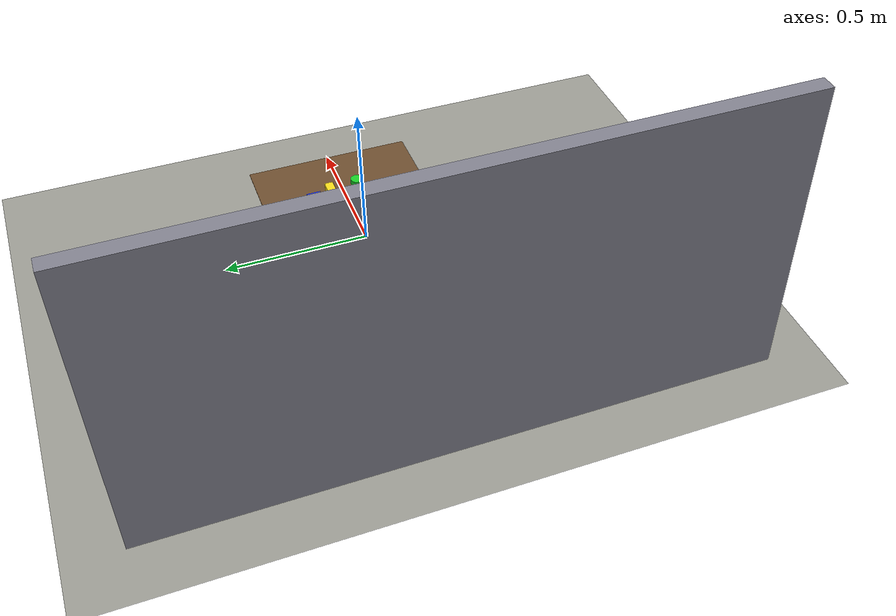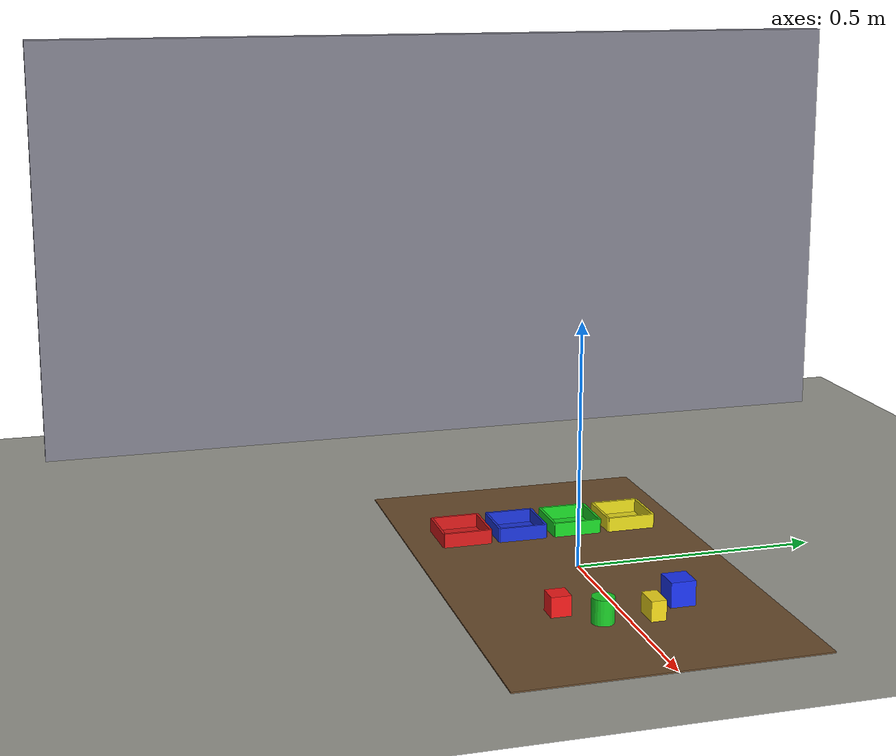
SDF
<?xml version="1.0" ?>
<sdf version="1.9">
  <world name="pick_and_place_sorting">

    <physics name="default_physics" type="ode">
      <max_step_size>0.004</max_step_size>
      <real_time_factor>1.0</real_time_factor>
    </physics>

    <light type="directional" name="sun">
      <cast_shadows>true</cast_shadows>
      <pose>0 0 10 0 0 0</pose>
      <diffuse>0.9 0.9 0.85 1</diffuse>
      <specular>0.3 0.3 0.3 1</specular>
      <attenuation>
        <range>1000</range>
        <constant>0.9</constant>
        <linear>0.01</linear>
        <quadratic>0.001</quadratic>
      </attenuation>
      <direction>-0.5 0.3 -0.9</direction>
    </light>

    <light type="directional" name="fill_light">
      <cast_shadows>false</cast_shadows>
      <pose>0 0 8 0 0 0</pose>
      <diffuse>0.4 0.4 0.5 1</diffuse>
      <specular>0.1 0.1 0.1 1</specular>
      <direction>0.5 -0.3 -0.7</direction>
    </light>

    <model name="ground_plane">
      <static>true</static>
      <link name="link">
        <collision name="collision">
          <geometry><plane><normal>0 0 1</normal><size>20 20</size></plane></geometry>
        </collision>
        <visual name="visual">
          <geometry><plane><normal>0 0 1</normal><size>20 20</size></plane></geometry>
          <material>
            <ambient>0.55 0.55 0.52 1</ambient>
            <diffuse>0.6 0.6 0.57 1</diffuse>
          </material>
        </visual>
      </link>
    </model>

    <!-- Worktop: 1.0 x 0.6 m, top surface at z = 0 -->
    <model name="table">
      <static>true</static>
      <pose>0 0 -0.02 0 0 0</pose>
      <link name="link">
        <visual name="visual">
          <geometry><box><size>1.0 0.6 0.04</size></box></geometry>
          <material>
            <ambient>0.30 0.22 0.14 1</ambient>
            <diffuse>0.42 0.30 0.18 1</diffuse>
          </material>
        </visual>
        <collision name="collision">
          <geometry><box><size>1.0 0.6 0.04</size></box></geometry>
          <surface><friction><ode><mu>0.9</mu><mu2>0.9</mu2></ode></friction></surface>
        </collision>
      </link>
    </model>

    <!--  OBJECTS TO SORT (dynamic, ~50 g each)                       -->

    <model name="red_cube">
      <pose>0.22 -0.12 0.025 0 0 0</pose>
      <link name="link">
        <visual name="visual">
          <geometry><box><size>0.04 0.04 0.04</size></box></geometry>
          <material>
            <ambient>0.7 0.05 0.05 1</ambient>
            <diffuse>0.95 0.10 0.10 1</diffuse>
            <specular>0.4 0.1 0.1 1</specular>
          </material>
        </visual>
        <collision name="collision">
          <geometry><box><size>0.04 0.04 0.04</size></box></geometry>
          <surface><friction><ode><mu>1.0</mu><mu2>1.0</mu2></ode></friction></surface>
        </collision>
        <inertial>
          <mass>0.05</mass>
          <inertia>
            <ixx>1.33e-5</ixx><iyy>1.33e-5</iyy><izz>1.33e-5</izz>
            <ixy>0</ixy><ixz>0</ixz><iyz>0</iyz>
          </inertia>
        </inertial>
      </link>
    </model>

    <model name="blue_cube">
      <pose>0.22 0.12 0.025 0 0 0</pose>
      <link name="link">
        <visual name="visual">
          <geometry><box><size>0.05 0.05 0.05</size></box></geometry>
          <material>
            <ambient>0.05 0.10 0.7 1</ambient>
            <diffuse>0.10 0.20 0.95 1</diffuse>
            <specular>0.1 0.1 0.4 1</specular>
          </material>
        </visual>
        <collision name="collision">
          <geometry><box><size>0.05 0.05 0.05</size></box></geometry>
          <surface><friction><ode><mu>1.0</mu><mu2>1.0</mu2></ode></friction></surface>
        </collision>
        <inertial>
          <mass>0.06</mass>
          <inertia>
            <ixx>2.5e-5</ixx><iyy>2.5e-5</iyy><izz>2.5e-5</izz>
            <ixy>0</ixy><ixz>0</ixz><iyz>0</iyz>
          </inertia>
        </inertial>
      </link>
    </model>

    <model name="green_cylinder">
      <pose>0.27 -0.05 0.025 0 0 0</pose>
      <link name="link">
        <visual name="visual">
          <geometry><cylinder><radius>0.022</radius><length>0.05</length></cylinder></geometry>
          <material>
            <ambient>0.05 0.55 0.10 1</ambient>
            <diffuse>0.10 0.80 0.15 1</diffuse>
            <specular>0.1 0.4 0.1 1</specular>
          </material>
        </visual>
        <collision name="collision">
          <geometry><cylinder><radius>0.022</radius><length>0.05</length></cylinder></geometry>
          <surface><friction><ode><mu>1.0</mu><mu2>1.0</mu2></ode></friction></surface>
        </collision>
        <inertial>
          <mass>0.05</mass>
          <inertia>
            <ixx>1.25e-5</ixx><iyy>1.25e-5</iyy><izz>1.21e-5</izz>
            <ixy>0</ixy><ixz>0</ixz><iyz>0</iyz>
          </inertia>
        </inertial>
      </link>
    </model>

    <model name="yellow_box">
      <pose>0.27 0.05 0.020 0 0 0</pose>
      <link name="link">
        <visual name="visual">
          <geometry><box><size>0.05 0.03 0.04</size></box></geometry>
          <material>
            <ambient>0.7 0.6 0.05 1</ambient>
            <diffuse>0.95 0.85 0.10 1</diffuse>
            <specular>0.4 0.4 0.1 1</specular>
          </material>
        </visual>
        <collision name="collision">
          <geometry><box><size>0.05 0.03 0.04</size></box></geometry>
          <surface><friction><ode><mu>1.0</mu><mu2>1.0</mu2></ode></friction></surface>
        </collision>
        <inertial>
          <mass>0.05</mass>
          <inertia>
            <ixx>1.08e-5</ixx><iyy>1.71e-5</iyy><izz>2.04e-5</izz>
            <ixy>0</ixy><ixz>0</ixz><iyz>0</iyz>
          </inertia>
        </inertial>
      </link>
    </model>

    <!--  DROP BINS (static, with low walls so objects stay inside)   -->
    <!--  Each bin: 0.10 x 0.10 footprint, 0.03 m wall height         -->

    <model name="red_bin">
      <static>true</static>
      <pose>-0.22 -0.18 0.0 0 0 0</pose>
      <link name="link">
        <visual name="floor"><pose>0 0 0.001 0 0 0</pose>
          <geometry><box><size>0.10 0.10 0.002</size></box></geometry>
          <material><ambient>0.55 0.05 0.05 1</ambient><diffuse>0.85 0.10 0.10 1</diffuse></material>
        </visual>
        <visual name="wn"><pose>0 0.05 0.015 0 0 0</pose>
          <geometry><box><size>0.10 0.005 0.03</size></box></geometry>
          <material><ambient>0.55 0.05 0.05 1</ambient><diffuse>0.85 0.10 0.10 1</diffuse></material>
        </visual>
        <visual name="ws"><pose>0 -0.05 0.015 0 0 0</pose>
          <geometry><box><size>0.10 0.005 0.03</size></box></geometry>
          <material><ambient>0.55 0.05 0.05 1</ambient><diffuse>0.85 0.10 0.10 1</diffuse></material>
        </visual>
        <visual name="we"><pose>0.05 0 0.015 0 0 0</pose>
          <geometry><box><size>0.005 0.10 0.03</size></box></geometry>
          <material><ambient>0.55 0.05 0.05 1</ambient><diffuse>0.85 0.10 0.10 1</diffuse></material>
        </visual>
        <visual name="ww"><pose>-0.05 0 0.015 0 0 0</pose>
          <geometry><box><size>0.005 0.10 0.03</size></box></geometry>
          <material><ambient>0.55 0.05 0.05 1</ambient><diffuse>0.85 0.10 0.10 1</diffuse></material>
        </visual>
        <collision name="floor_c"><pose>0 0 0.001 0 0 0</pose>
          <geometry><box><size>0.10 0.10 0.002</size></box></geometry></collision>
        <collision name="wn_c"><pose>0 0.05 0.015 0 0 0</pose>
          <geometry><box><size>0.10 0.005 0.03</size></box></geometry></collision>
        <collision name="ws_c"><pose>0 -0.05 0.015 0 0 0</pose>
          <geometry><box><size>0.10 0.005 0.03</size></box></geometry></collision>
        <collision name="we_c"><pose>0.05 0 0.015 0 0 0</pose>
          <geometry><box><size>0.005 0.10 0.03</size></box></geometry></collision>
        <collision name="ww_c"><pose>-0.05 0 0.015 0 0 0</pose>
          <geometry><box><size>0.005 0.10 0.03</size></box></geometry></collision>
      </link>
    </model>

    <model name="blue_bin">
      <static>true</static>
      <pose>-0.22 -0.06 0.0 0 0 0</pose>
      <link name="link">
        <visual name="floor"><pose>0 0 0.001 0 0 0</pose>
          <geometry><box><size>0.10 0.10 0.002</size></box></geometry>
          <material><ambient>0.05 0.10 0.55 1</ambient><diffuse>0.10 0.20 0.85 1</diffuse></material>
        </visual>
        <visual name="wn"><pose>0 0.05 0.015 0 0 0</pose>
          <geometry><box><size>0.10 0.005 0.03</size></box></geometry>
          <material><ambient>0.05 0.10 0.55 1</ambient><diffuse>0.10 0.20 0.85 1</diffuse></material>
        </visual>
        <visual name="ws"><pose>0 -0.05 0.015 0 0 0</pose>
          <geometry><box><size>0.10 0.005 0.03</size></box></geometry>
          <material><ambient>0.05 0.10 0.55 1</ambient><diffuse>0.10 0.20 0.85 1</diffuse></material>
        </visual>
        <visual name="we"><pose>0.05 0 0.015 0 0 0</pose>
          <geometry><box><size>0.005 0.10 0.03</size></box></geometry>
          <material><ambient>0.05 0.10 0.55 1</ambient><diffuse>0.10 0.20 0.85 1</diffuse></material>
        </visual>
        <visual name="ww"><pose>-0.05 0 0.015 0 0 0</pose>
          <geometry><box><size>0.005 0.10 0.03</size></box></geometry>
          <material><ambient>0.05 0.10 0.55 1</ambient><diffuse>0.10 0.20 0.85 1</diffuse></material>
        </visual>
        <collision name="floor_c"><pose>0 0 0.001 0 0 0</pose>
          <geometry><box><size>0.10 0.10 0.002</size></box></geometry></collision>
        <collision name="wn_c"><pose>0 0.05 0.015 0 0 0</pose>
          <geometry><box><size>0.10 0.005 0.03</size></box></geometry></collision>
        <collision name="ws_c"><pose>0 -0.05 0.015 0 0 0</pose>
          <geometry><box><size>0.10 0.005 0.03</size></box></geometry></collision>
        <collision name="we_c"><pose>0.05 0 0.015 0 0 0</pose>
          <geometry><box><size>0.005 0.10 0.03</size></box></geometry></collision>
        <collision name="ww_c"><pose>-0.05 0 0.015 0 0 0</pose>
          <geometry><box><size>0.005 0.10 0.03</size></box></geometry></collision>
      </link>
    </model>

    <model name="green_bin">
      <static>true</static>
      <pose>-0.22 0.06 0.0 0 0 0</pose>
      <link name="link">
        <visual name="floor"><pose>0 0 0.001 0 0 0</pose>
          <geometry><box><size>0.10 0.10 0.002</size></box></geometry>
          <material><ambient>0.05 0.55 0.10 1</ambient><diffuse>0.10 0.85 0.15 1</diffuse></material>
        </visual>
        <visual name="wn"><pose>0 0.05 0.015 0 0 0</pose>
          <geometry><box><size>0.10 0.005 0.03</size></box></geometry>
          <material><ambient>0.05 0.55 0.10 1</ambient><diffuse>0.10 0.85 0.15 1</diffuse></material>
        </visual>
        <visual name="ws"><pose>0 -0.05 0.015 0 0 0</pose>
          <geometry><box><size>0.10 0.005 0.03</size></box></geometry>
          <material><ambient>0.05 0.55 0.10 1</ambient><diffuse>0.10 0.85 0.15 1</diffuse></material>
        </visual>
        <visual name="we"><pose>0.05 0 0.015 0 0 0</pose>
          <geometry><box><size>0.005 0.10 0.03</size></box></geometry>
          <material><ambient>0.05 0.55 0.10 1</ambient><diffuse>0.10 0.85 0.15 1</diffuse></material>
        </visual>
        <visual name="ww"><pose>-0.05 0 0.015 0 0 0</pose>
          <geometry><box><size>0.005 0.10 0.03</size></box></geometry>
          <material><ambient>0.05 0.55 0.10 1</ambient><diffuse>0.10 0.85 0.15 1</diffuse></material>
        </visual>
        <collision name="floor_c"><pose>0 0 0.001 0 0 0</pose>
          <geometry><box><size>0.10 0.10 0.002</size></box></geometry></collision>
        <collision name="wn_c"><pose>0 0.05 0.015 0 0 0</pose>
          <geometry><box><size>0.10 0.005 0.03</size></box></geometry></collision>
        <collision name="ws_c"><pose>0 -0.05 0.015 0 0 0</pose>
          <geometry><box><size>0.10 0.005 0.03</size></box></geometry></collision>
        <collision name="we_c"><pose>0.05 0 0.015 0 0 0</pose>
          <geometry><box><size>0.005 0.10 0.03</size></box></geometry></collision>
        <collision name="ww_c"><pose>-0.05 0 0.015 0 0 0</pose>
          <geometry><box><size>0.005 0.10 0.03</size></box></geometry></collision>
      </link>
    </model>

    <model name="yellow_bin">
      <static>true</static>
      <pose>-0.22 0.18 0.0 0 0 0</pose>
      <link name="link">
        <visual name="floor"><pose>0 0 0.001 0 0 0</pose>
          <geometry><box><size>0.10 0.10 0.002</size></box></geometry>
          <material><ambient>0.55 0.50 0.05 1</ambient><diffuse>0.90 0.85 0.10 1</diffuse></material>
        </visual>
        <visual name="wn"><pose>0 0.05 0.015 0 0 0</pose>
          <geometry><box><size>0.10 0.005 0.03</size></box></geometry>
          <material><ambient>0.55 0.50 0.05 1</ambient><diffuse>0.90 0.85 0.10 1</diffuse></material>
        </visual>
        <visual name="ws"><pose>0 -0.05 0.015 0 0 0</pose>
          <geometry><box><size>0.10 0.005 0.03</size></box></geometry>
          <material><ambient>0.55 0.50 0.05 1</ambient><diffuse>0.90 0.85 0.10 1</diffuse></material>
        </visual>
        <visual name="we"><pose>0.05 0 0.015 0 0 0</pose>
          <geometry><box><size>0.005 0.10 0.03</size></box></geometry>
          <material><ambient>0.55 0.50 0.05 1</ambient><diffuse>0.90 0.85 0.10 1</diffuse></material>
        </visual>
        <visual name="ww"><pose>-0.05 0 0.015 0 0 0</pose>
          <geometry><box><size>0.005 0.10 0.03</size></box></geometry>
          <material><ambient>0.55 0.50 0.05 1</ambient><diffuse>0.90 0.85 0.10 1</diffuse></material>
        </visual>
        <collision name="floor_c"><pose>0 0 0.001 0 0 0</pose>
          <geometry><box><size>0.10 0.10 0.002</size></box></geometry></collision>
        <collision name="wn_c"><pose>0 0.05 0.015 0 0 0</pose>
          <geometry><box><size>0.10 0.005 0.03</size></box></geometry></collision>
        <collision name="ws_c"><pose>0 -0.05 0.015 0 0 0</pose>
          <geometry><box><size>0.10 0.005 0.03</size></box></geometry></collision>
        <collision name="we_c"><pose>0.05 0 0.015 0 0 0</pose>
          <geometry><box><size>0.005 0.10 0.03</size></box></geometry></collision>
        <collision name="ww_c"><pose>-0.05 0 0.015 0 0 0</pose>
          <geometry><box><size>0.005 0.10 0.03</size></box></geometry></collision>
      </link>
    </model>

    <model name="back_wall">
      <static>true</static>
      <pose>-1.0 0 0.5 0 0 0</pose>
      <link name="link">
        <visual name="visual">
          <geometry><box><size>0.05 2.0 1.0</size></box></geometry>
          <material>
            <ambient>0.45 0.45 0.50 1</ambient>
            <diffuse>0.5 0.5 0.55 1</diffuse>
          </material>
        </visual>
      </link>
    </model>

  </world>
</sdf>
